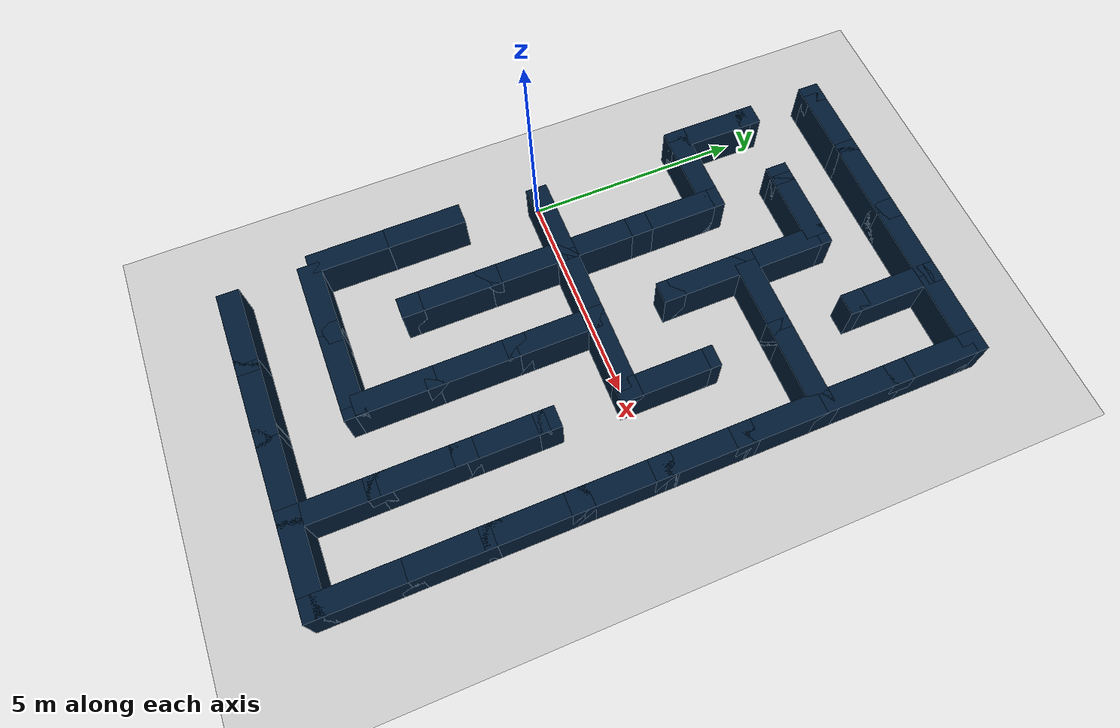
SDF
<sdf version="1.8">
 <world name="maze_8x8">
  <model name="ground_plane">
   <static>1</static>
   <link name="link">
    <collision name="collision">
     <geometry><plane><normal>0 0 1</normal><size>28.80 28.80</size></plane></geometry>
    </collision>
    <visual name="visual">
     <geometry><plane><normal>0 0 1</normal><size>28.80 28.80</size></plane></geometry>
     <material>
      <ambient>0.8 0.8 0.8 1</ambient>
      <diffuse>0.8 0.8 0.8 1</diffuse>
      <specular>0.8 0.8 0.8 1</specular>
     </material>
     <plugin name="__default__" filename="__default__"/>
    </visual>
   </link>
   <plugin name="__default__" filename="__default__"/>
  </model>
  <model name="obstacles">
   <pose>0 0 0.50 0 0 0</pose>
   <static>true</static>
   <link name="corner_block_6">
    <pose>1.80 -7.20 0 0 0 0</pose>
    <static>true</static>
    <collision name="corner_block_6_collision">
     <geometry><box><size>0.50 0.50 1.00</size></box></geometry>
    </collision>
    <visual name="corner_block_6_visual">
     <geometry><box><size>0.50 0.50 1.00</size></box></geometry>
     <material>
      <ambient>0.1 0.1 0.1 1</ambient>
      <diffuse>0 0.1 0.2 1</diffuse>
      <specular>0 0.01 0.05 1</specular>
     </material>
    </visual>
   </link>
   <link name="corner_block_7">
    <pose>3.60 -7.20 0 0 0 0</pose>
    <static>true</static>
    <collision name="corner_block_7_collision">
     <geometry><box><size>0.50 0.50 1.00</size></box></geometry>
    </collision>
    <visual name="corner_block_7_visual">
     <geometry><box><size>0.50 0.50 1.00</size></box></geometry>
     <material>
      <ambient>0.1 0.1 0.1 1</ambient>
      <diffuse>0 0.1 0.2 1</diffuse>
      <specular>0 0.01 0.05 1</specular>
     </material>
    </visual>
   </link>
   <link name="corner_block_8">
    <pose>5.40 -7.20 0 0 0 0</pose>
    <static>true</static>
    <collision name="corner_block_8_collision">
     <geometry><box><size>0.50 0.50 1.00</size></box></geometry>
    </collision>
    <visual name="corner_block_8_visual">
     <geometry><box><size>0.50 0.50 1.00</size></box></geometry>
     <material>
      <ambient>0.1 0.1 0.1 1</ambient>
      <diffuse>0 0.1 0.2 1</diffuse>
      <specular>0 0.01 0.05 1</specular>
     </material>
    </visual>
   </link>
   <link name="corner_block_9">
    <pose>7.20 -7.20 0 0 0 0</pose>
    <static>true</static>
    <collision name="corner_block_9_collision">
     <geometry><box><size>0.50 0.50 1.00</size></box></geometry>
    </collision>
    <visual name="corner_block_9_visual">
     <geometry><box><size>0.50 0.50 1.00</size></box></geometry>
     <material>
      <ambient>0.1 0.1 0.1 1</ambient>
      <diffuse>0 0.1 0.2 1</diffuse>
      <specular>0 0.01 0.05 1</specular>
     </material>
    </visual>
   </link>
   <link name="corner_block_15">
    <pose>1.80 -5.40 0 0 0 0</pose>
    <static>true</static>
    <collision name="corner_block_15_collision">
     <geometry><box><size>0.50 0.50 1.00</size></box></geometry>
    </collision>
    <visual name="corner_block_15_visual">
     <geometry><box><size>0.50 0.50 1.00</size></box></geometry>
     <material>
      <ambient>0.1 0.1 0.1 1</ambient>
      <diffuse>0 0.1 0.2 1</diffuse>
      <specular>0 0.01 0.05 1</specular>
     </material>
    </visual>
   </link>
   <link name="corner_block_16">
    <pose>3.60 -5.40 0 0 0 0</pose>
    <static>true</static>
    <collision name="corner_block_16_collision">
     <geometry><box><size>0.50 0.50 1.00</size></box></geometry>
    </collision>
    <visual name="corner_block_16_visual">
     <geometry><box><size>0.50 0.50 1.00</size></box></geometry>
     <material>
      <ambient>0.1 0.1 0.1 1</ambient>
      <diffuse>0 0.1 0.2 1</diffuse>
      <specular>0 0.01 0.05 1</specular>
     </material>
    </visual>
   </link>
   <link name="corner_block_17">
    <pose>5.40 -5.40 0 0 0 0</pose>
    <static>true</static>
    <collision name="corner_block_17_collision">
     <geometry><box><size>0.50 0.50 1.00</size></box></geometry>
    </collision>
    <visual name="corner_block_17_visual">
     <geometry><box><size>0.50 0.50 1.00</size></box></geometry>
     <material>
      <ambient>0.1 0.1 0.1 1</ambient>
      <diffuse>0 0.1 0.2 1</diffuse>
      <specular>0 0.01 0.05 1</specular>
     </material>
    </visual>
   </link>
   <link name="corner_block_18">
    <pose>7.20 -5.40 0 0 0 0</pose>
    <static>true</static>
    <collision name="corner_block_18_collision">
     <geometry><box><size>0.50 0.50 1.00</size></box></geometry>
    </collision>
    <visual name="corner_block_18_visual">
     <geometry><box><size>0.50 0.50 1.00</size></box></geometry>
     <material>
      <ambient>0.1 0.1 0.1 1</ambient>
      <diffuse>0 0.1 0.2 1</diffuse>
      <specular>0 0.01 0.05 1</specular>
     </material>
    </visual>
   </link>
   <link name="corner_block_24">
    <pose>1.80 -3.60 0 0 0 0</pose>
    <static>true</static>
    <collision name="corner_block_24_collision">
     <geometry><box><size>0.50 0.50 1.00</size></box></geometry>
    </collision>
    <visual name="corner_block_24_visual">
     <geometry><box><size>0.50 0.50 1.00</size></box></geometry>
     <material>
      <ambient>0.1 0.1 0.1 1</ambient>
      <diffuse>0 0.1 0.2 1</diffuse>
      <specular>0 0.01 0.05 1</specular>
     </material>
    </visual>
   </link>
   <link name="corner_block_25">
    <pose>3.60 -3.60 0 0 0 0</pose>
    <static>true</static>
    <collision name="corner_block_25_collision">
     <geometry><box><size>0.50 0.50 1.00</size></box></geometry>
    </collision>
    <visual name="corner_block_25_visual">
     <geometry><box><size>0.50 0.50 1.00</size></box></geometry>
     <material>
      <ambient>0.1 0.1 0.1 1</ambient>
      <diffuse>0 0.1 0.2 1</diffuse>
      <specular>0 0.01 0.05 1</specular>
     </material>
    </visual>
   </link>
   <link name="corner_block_26">
    <pose>5.40 -3.60 0 0 0 0</pose>
    <static>true</static>
    <collision name="corner_block_26_collision">
     <geometry><box><size>0.50 0.50 1.00</size></box></geometry>
    </collision>
    <visual name="corner_block_26_visual">
     <geometry><box><size>0.50 0.50 1.00</size></box></geometry>
     <material>
      <ambient>0.1 0.1 0.1 1</ambient>
      <diffuse>0 0.1 0.2 1</diffuse>
      <specular>0 0.01 0.05 1</specular>
     </material>
    </visual>
   </link>
   <link name="corner_block_27">
    <pose>7.20 -3.60 0 0 0 0</pose>
    <static>true</static>
    <collision name="corner_block_27_collision">
     <geometry><box><size>0.50 0.50 1.00</size></box></geometry>
    </collision>
    <visual name="corner_block_27_visual">
     <geometry><box><size>0.50 0.50 1.00</size></box></geometry>
     <material>
      <ambient>0.1 0.1 0.1 1</ambient>
      <diffuse>0 0.1 0.2 1</diffuse>
      <specular>0 0.01 0.05 1</specular>
     </material>
    </visual>
   </link>
   <link name="corner_block_33">
    <pose>1.80 -1.80 0 0 0 0</pose>
    <static>true</static>
    <collision name="corner_block_33_collision">
     <geometry><box><size>0.50 0.50 1.00</size></box></geometry>
    </collision>
    <visual name="corner_block_33_visual">
     <geometry><box><size>0.50 0.50 1.00</size></box></geometry>
     <material>
      <ambient>0.1 0.1 0.1 1</ambient>
      <diffuse>0 0.1 0.2 1</diffuse>
      <specular>0 0.01 0.05 1</specular>
     </material>
    </visual>
   </link>
   <link name="corner_block_34">
    <pose>3.60 -1.80 0 0 0 0</pose>
    <static>true</static>
    <collision name="corner_block_34_collision">
     <geometry><box><size>0.50 0.50 1.00</size></box></geometry>
    </collision>
    <visual name="corner_block_34_visual">
     <geometry><box><size>0.50 0.50 1.00</size></box></geometry>
     <material>
      <ambient>0.1 0.1 0.1 1</ambient>
      <diffuse>0 0.1 0.2 1</diffuse>
      <specular>0 0.01 0.05 1</specular>
     </material>
    </visual>
   </link>
   <link name="corner_block_35">
    <pose>5.40 -1.80 0 0 0 0</pose>
    <static>true</static>
    <collision name="corner_block_35_collision">
     <geometry><box><size>0.50 0.50 1.00</size></box></geometry>
    </collision>
    <visual name="corner_block_35_visual">
     <geometry><box><size>0.50 0.50 1.00</size></box></geometry>
     <material>
      <ambient>0.1 0.1 0.1 1</ambient>
      <diffuse>0 0.1 0.2 1</diffuse>
      <specular>0 0.01 0.05 1</specular>
     </material>
    </visual>
   </link>
   <link name="corner_block_36">
    <pose>7.20 -1.80 0 0 0 0</pose>
    <static>true</static>
    <collision name="corner_block_36_collision">
     <geometry><box><size>0.50 0.50 1.00</size></box></geometry>
    </collision>
    <visual name="corner_block_36_visual">
     <geometry><box><size>0.50 0.50 1.00</size></box></geometry>
     <material>
      <ambient>0.1 0.1 0.1 1</ambient>
      <diffuse>0 0.1 0.2 1</diffuse>
      <specular>0 0.01 0.05 1</specular>
     </material>
    </visual>
   </link>
   <link name="corner_block_42">
    <pose>1.80 0.00 0 0 0 0</pose>
    <static>true</static>
    <collision name="corner_block_42_collision">
     <geometry><box><size>0.50 0.50 1.00</size></box></geometry>
    </collision>
    <visual name="corner_block_42_visual">
     <geometry><box><size>0.50 0.50 1.00</size></box></geometry>
     <material>
      <ambient>0.1 0.1 0.1 1</ambient>
      <diffuse>0 0.1 0.2 1</diffuse>
      <specular>0 0.01 0.05 1</specular>
     </material>
    </visual>
   </link>
   <link name="corner_block_43">
    <pose>3.60 0.00 0 0 0 0</pose>
    <static>true</static>
    <collision name="corner_block_43_collision">
     <geometry><box><size>0.50 0.50 1.00</size></box></geometry>
    </collision>
    <visual name="corner_block_43_visual">
     <geometry><box><size>0.50 0.50 1.00</size></box></geometry>
     <material>
      <ambient>0.1 0.1 0.1 1</ambient>
      <diffuse>0 0.1 0.2 1</diffuse>
      <specular>0 0.01 0.05 1</specular>
     </material>
    </visual>
   </link>
   <link name="corner_block_44">
    <pose>5.40 0.00 0 0 0 0</pose>
    <static>true</static>
    <collision name="corner_block_44_collision">
     <geometry><box><size>0.50 0.50 1.00</size></box></geometry>
    </collision>
    <visual name="corner_block_44_visual">
     <geometry><box><size>0.50 0.50 1.00</size></box></geometry>
     <material>
      <ambient>0.1 0.1 0.1 1</ambient>
      <diffuse>0 0.1 0.2 1</diffuse>
      <specular>0 0.01 0.05 1</specular>
     </material>
    </visual>
   </link>
   <link name="corner_block_45">
    <pose>7.20 0.00 0 0 0 0</pose>
    <static>true</static>
    <collision name="corner_block_45_collision">
     <geometry><box><size>0.50 0.50 1.00</size></box></geometry>
    </collision>
    <visual name="corner_block_45_visual">
     <geometry><box><size>0.50 0.50 1.00</size></box></geometry>
     <material>
      <ambient>0.1 0.1 0.1 1</ambient>
      <diffuse>0 0.1 0.2 1</diffuse>
      <specular>0 0.01 0.05 1</specular>
     </material>
    </visual>
   </link>
   <link name="corner_block_51">
    <pose>1.80 1.80 0 0 0 0</pose>
    <static>true</static>
    <collision name="corner_block_51_collision">
     <geometry><box><size>0.50 0.50 1.00</size></box></geometry>
    </collision>
    <visual name="corner_block_51_visual">
     <geometry><box><size>0.50 0.50 1.00</size></box></geometry>
     <material>
      <ambient>0.1 0.1 0.1 1</ambient>
      <diffuse>0 0.1 0.2 1</diffuse>
      <specular>0 0.01 0.05 1</specular>
     </material>
    </visual>
   </link>
   <link name="corner_block_52">
    <pose>3.60 1.80 0 0 0 0</pose>
    <static>true</static>
    <collision name="corner_block_52_collision">
     <geometry><box><size>0.50 0.50 1.00</size></box></geometry>
    </collision>
    <visual name="corner_block_52_visual">
     <geometry><box><size>0.50 0.50 1.00</size></box></geometry>
     <material>
      <ambient>0.1 0.1 0.1 1</ambient>
      <diffuse>0 0.1 0.2 1</diffuse>
      <specular>0 0.01 0.05 1</specular>
     </material>
    </visual>
   </link>
   <link name="corner_block_53">
    <pose>5.40 1.80 0 0 0 0</pose>
    <static>true</static>
    <collision name="corner_block_53_collision">
     <geometry><box><size>0.50 0.50 1.00</size></box></geometry>
    </collision>
    <visual name="corner_block_53_visual">
     <geometry><box><size>0.50 0.50 1.00</size></box></geometry>
     <material>
      <ambient>0.1 0.1 0.1 1</ambient>
      <diffuse>0 0.1 0.2 1</diffuse>
      <specular>0 0.01 0.05 1</specular>
     </material>
    </visual>
   </link>
   <link name="corner_block_54">
    <pose>7.20 1.80 0 0 0 0</pose>
    <static>true</static>
    <collision name="corner_block_54_collision">
     <geometry><box><size>0.50 0.50 1.00</size></box></geometry>
    </collision>
    <visual name="corner_block_54_visual">
     <geometry><box><size>0.50 0.50 1.00</size></box></geometry>
     <material>
      <ambient>0.1 0.1 0.1 1</ambient>
      <diffuse>0 0.1 0.2 1</diffuse>
      <specular>0 0.01 0.05 1</specular>
     </material>
    </visual>
   </link>
   <link name="corner_block_59">
    <pose>0.00 3.60 0 0 0 0</pose>
    <static>true</static>
    <collision name="corner_block_59_collision">
     <geometry><box><size>0.50 0.50 1.00</size></box></geometry>
    </collision>
    <visual name="corner_block_59_visual">
     <geometry><box><size>0.50 0.50 1.00</size></box></geometry>
     <material>
      <ambient>0.1 0.1 0.1 1</ambient>
      <diffuse>0 0.1 0.2 1</diffuse>
      <specular>0 0.01 0.05 1</specular>
     </material>
    </visual>
   </link>
   <link name="corner_block_60">
    <pose>1.80 3.60 0 0 0 0</pose>
    <static>true</static>
    <collision name="corner_block_60_collision">
     <geometry><box><size>0.50 0.50 1.00</size></box></geometry>
    </collision>
    <visual name="corner_block_60_visual">
     <geometry><box><size>0.50 0.50 1.00</size></box></geometry>
     <material>
      <ambient>0.1 0.1 0.1 1</ambient>
      <diffuse>0 0.1 0.2 1</diffuse>
      <specular>0 0.01 0.05 1</specular>
     </material>
    </visual>
   </link>
   <link name="corner_block_61">
    <pose>3.60 3.60 0 0 0 0</pose>
    <static>true</static>
    <collision name="corner_block_61_collision">
     <geometry><box><size>0.50 0.50 1.00</size></box></geometry>
    </collision>
    <visual name="corner_block_61_visual">
     <geometry><box><size>0.50 0.50 1.00</size></box></geometry>
     <material>
      <ambient>0.1 0.1 0.1 1</ambient>
      <diffuse>0 0.1 0.2 1</diffuse>
      <specular>0 0.01 0.05 1</specular>
     </material>
    </visual>
   </link>
   <link name="corner_block_62">
    <pose>5.40 3.60 0 0 0 0</pose>
    <static>true</static>
    <collision name="corner_block_62_collision">
     <geometry><box><size>0.50 0.50 1.00</size></box></geometry>
    </collision>
    <visual name="corner_block_62_visual">
     <geometry><box><size>0.50 0.50 1.00</size></box></geometry>
     <material>
      <ambient>0.1 0.1 0.1 1</ambient>
      <diffuse>0 0.1 0.2 1</diffuse>
      <specular>0 0.01 0.05 1</specular>
     </material>
    </visual>
   </link>
   <link name="corner_block_63">
    <pose>7.20 3.60 0 0 0 0</pose>
    <static>true</static>
    <collision name="corner_block_63_collision">
     <geometry><box><size>0.50 0.50 1.00</size></box></geometry>
    </collision>
    <visual name="corner_block_63_visual">
     <geometry><box><size>0.50 0.50 1.00</size></box></geometry>
     <material>
      <ambient>0.1 0.1 0.1 1</ambient>
      <diffuse>0 0.1 0.2 1</diffuse>
      <specular>0 0.01 0.05 1</specular>
     </material>
    </visual>
   </link>
   <link name="corner_block_68">
    <pose>0.00 5.40 0 0 0 0</pose>
    <static>true</static>
    <collision name="corner_block_68_collision">
     <geometry><box><size>0.50 0.50 1.00</size></box></geometry>
    </collision>
    <visual name="corner_block_68_visual">
     <geometry><box><size>0.50 0.50 1.00</size></box></geometry>
     <material>
      <ambient>0.1 0.1 0.1 1</ambient>
      <diffuse>0 0.1 0.2 1</diffuse>
      <specular>0 0.01 0.05 1</specular>
     </material>
    </visual>
   </link>
   <link name="corner_block_69">
    <pose>1.80 5.40 0 0 0 0</pose>
    <static>true</static>
    <collision name="corner_block_69_collision">
     <geometry><box><size>0.50 0.50 1.00</size></box></geometry>
    </collision>
    <visual name="corner_block_69_visual">
     <geometry><box><size>0.50 0.50 1.00</size></box></geometry>
     <material>
      <ambient>0.1 0.1 0.1 1</ambient>
      <diffuse>0 0.1 0.2 1</diffuse>
      <specular>0 0.01 0.05 1</specular>
     </material>
    </visual>
   </link>
   <link name="corner_block_70">
    <pose>3.60 5.40 0 0 0 0</pose>
    <static>true</static>
    <collision name="corner_block_70_collision">
     <geometry><box><size>0.50 0.50 1.00</size></box></geometry>
    </collision>
    <visual name="corner_block_70_visual">
     <geometry><box><size>0.50 0.50 1.00</size></box></geometry>
     <material>
      <ambient>0.1 0.1 0.1 1</ambient>
      <diffuse>0 0.1 0.2 1</diffuse>
      <specular>0 0.01 0.05 1</specular>
     </material>
    </visual>
   </link>
   <link name="corner_block_71">
    <pose>5.40 5.40 0 0 0 0</pose>
    <static>true</static>
    <collision name="corner_block_71_collision">
     <geometry><box><size>0.50 0.50 1.00</size></box></geometry>
    </collision>
    <visual name="corner_block_71_visual">
     <geometry><box><size>0.50 0.50 1.00</size></box></geometry>
     <material>
      <ambient>0.1 0.1 0.1 1</ambient>
      <diffuse>0 0.1 0.2 1</diffuse>
      <specular>0 0.01 0.05 1</specular>
     </material>
    </visual>
   </link>
   <link name="corner_block_72">
    <pose>7.20 5.40 0 0 0 0</pose>
    <static>true</static>
    <collision name="corner_block_72_collision">
     <geometry><box><size>0.50 0.50 1.00</size></box></geometry>
    </collision>
    <visual name="corner_block_72_visual">
     <geometry><box><size>0.50 0.50 1.00</size></box></geometry>
     <material>
      <ambient>0.1 0.1 0.1 1</ambient>
      <diffuse>0 0.1 0.2 1</diffuse>
      <specular>0 0.01 0.05 1</specular>
     </material>
    </visual>
   </link>
   <link name="corner_block_77">
    <pose>0.00 7.20 0 0 0 0</pose>
    <static>true</static>
    <collision name="corner_block_77_collision">
     <geometry><box><size>0.50 0.50 1.00</size></box></geometry>
    </collision>
    <visual name="corner_block_77_visual">
     <geometry><box><size>0.50 0.50 1.00</size></box></geometry>
     <material>
      <ambient>0.1 0.1 0.1 1</ambient>
      <diffuse>0 0.1 0.2 1</diffuse>
      <specular>0 0.01 0.05 1</specular>
     </material>
    </visual>
   </link>
   <link name="corner_block_78">
    <pose>1.80 7.20 0 0 0 0</pose>
    <static>true</static>
    <collision name="corner_block_78_collision">
     <geometry><box><size>0.50 0.50 1.00</size></box></geometry>
    </collision>
    <visual name="corner_block_78_visual">
     <geometry><box><size>0.50 0.50 1.00</size></box></geometry>
     <material>
      <ambient>0.1 0.1 0.1 1</ambient>
      <diffuse>0 0.1 0.2 1</diffuse>
      <specular>0 0.01 0.05 1</specular>
     </material>
    </visual>
   </link>
   <link name="corner_block_79">
    <pose>3.60 7.20 0 0 0 0</pose>
    <static>true</static>
    <collision name="corner_block_79_collision">
     <geometry><box><size>0.50 0.50 1.00</size></box></geometry>
    </collision>
    <visual name="corner_block_79_visual">
     <geometry><box><size>0.50 0.50 1.00</size></box></geometry>
     <material>
      <ambient>0.1 0.1 0.1 1</ambient>
      <diffuse>0 0.1 0.2 1</diffuse>
      <specular>0 0.01 0.05 1</specular>
     </material>
    </visual>
   </link>
   <link name="corner_block_80">
    <pose>5.40 7.20 0 0 0 0</pose>
    <static>true</static>
    <collision name="corner_block_80_collision">
     <geometry><box><size>0.50 0.50 1.00</size></box></geometry>
    </collision>
    <visual name="corner_block_80_visual">
     <geometry><box><size>0.50 0.50 1.00</size></box></geometry>
     <material>
      <ambient>0.1 0.1 0.1 1</ambient>
      <diffuse>0 0.1 0.2 1</diffuse>
      <specular>0 0.01 0.05 1</specular>
     </material>
    </visual>
   </link>
   <link name="corner_block_81">
    <pose>7.20 7.20 0 0 0 0</pose>
    <static>true</static>
    <collision name="corner_block_81_collision">
     <geometry><box><size>0.50 0.50 1.00</size></box></geometry>
    </collision>
    <visual name="corner_block_81_visual">
     <geometry><box><size>0.50 0.50 1.00</size></box></geometry>
     <material>
      <ambient>0.1 0.1 0.1 1</ambient>
      <diffuse>0 0.1 0.2 1</diffuse>
      <specular>0 0.01 0.05 1</specular>
     </material>
    </visual>
   </link>
   <link name="wall86">
    <pose>0.90 -7.20 0 0 0 0</pose>
    <static>true</static>
    <collision name="wall86_collision"><geometry><box><size>1.80 0.50 1.00</size></box></geometry></collision>
    <visual name="wall86_visual">
     <geometry><box><size>1.80 0.50 1.00</size></box></geometry>
     <material>
      <ambient>0.1 0.1 0.1 1</ambient>
      <diffuse>0 0.1 0.2 1</diffuse>
      <specular>0 0.01 0.05 1</specular>
     </material>
    </visual>
   </link>
   <link name="wall87">
    <pose>2.70 -7.20 0 0 0 0</pose>
    <static>true</static>
    <collision name="wall87_collision"><geometry><box><size>1.80 0.50 1.00</size></box></geometry></collision>
    <visual name="wall87_visual">
     <geometry><box><size>1.80 0.50 1.00</size></box></geometry>
     <material>
      <ambient>0.1 0.1 0.1 1</ambient>
      <diffuse>0 0.1 0.2 1</diffuse>
      <specular>0 0.01 0.05 1</specular>
     </material>
    </visual>
   </link>
   <link name="wall88">
    <pose>4.50 -7.20 0 0 0 0</pose>
    <static>true</static>
    <collision name="wall88_collision"><geometry><box><size>1.80 0.50 1.00</size></box></geometry></collision>
    <visual name="wall88_visual">
     <geometry><box><size>1.80 0.50 1.00</size></box></geometry>
     <material>
      <ambient>0.1 0.1 0.1 1</ambient>
      <diffuse>0 0.1 0.2 1</diffuse>
      <specular>0 0.01 0.05 1</specular>
     </material>
    </visual>
   </link>
   <link name="wall89">
    <pose>6.30 -7.20 0 0 0 0</pose>
    <static>true</static>
    <collision name="wall89_collision"><geometry><box><size>1.80 0.50 1.00</size></box></geometry></collision>
    <visual name="wall89_visual">
     <geometry><box><size>1.80 0.50 1.00</size></box></geometry>
     <material>
      <ambient>0.1 0.1 0.1 1</ambient>
      <diffuse>0 0.1 0.2 1</diffuse>
      <specular>0 0.01 0.05 1</specular>
     </material>
    </visual>
   </link>
   <link name="wall91">
    <pose>0.90 -5.40 0 0 0 0</pose>
    <static>true</static>
    <collision name="wall91_collision"><geometry><box><size>1.80 0.50 1.00</size></box></geometry></collision>
    <visual name="wall91_visual">
     <geometry><box><size>1.80 0.50 1.00</size></box></geometry>
     <material>
      <ambient>0.1 0.1 0.1 1</ambient>
      <diffuse>0 0.1 0.2 1</diffuse>
      <specular>0 0.01 0.05 1</specular>
     </material>
    </visual>
   </link>
   <link name="wall92">
    <pose>2.70 -5.40 0 0 0 0</pose>
    <static>true</static>
    <collision name="wall92_collision"><geometry><box><size>1.80 0.50 1.00</size></box></geometry></collision>
    <visual name="wall92_visual">
     <geometry><box><size>1.80 0.50 1.00</size></box></geometry>
     <material>
      <ambient>0.1 0.1 0.1 1</ambient>
      <diffuse>0 0.1 0.2 1</diffuse>
      <specular>0 0.01 0.05 1</specular>
     </material>
    </visual>
   </link>
   <link name="wall98">
    <pose>0.90 0.00 0 0 0 0</pose>
    <static>true</static>
    <collision name="wall98_collision"><geometry><box><size>1.80 0.50 1.00</size></box></geometry></collision>
    <visual name="wall98_visual">
     <geometry><box><size>1.80 0.50 1.00</size></box></geometry>
     <material>
      <ambient>0.1 0.1 0.1 1</ambient>
      <diffuse>0 0.1 0.2 1</diffuse>
      <specular>0 0.01 0.05 1</specular>
     </material>
    </visual>
   </link>
   <link name="wall99">
    <pose>2.70 0.00 0 0 0 0</pose>
    <static>true</static>
    <collision name="wall99_collision"><geometry><box><size>1.80 0.50 1.00</size></box></geometry></collision>
    <visual name="wall99_visual">
     <geometry><box><size>1.80 0.50 1.00</size></box></geometry>
     <material>
      <ambient>0.1 0.1 0.1 1</ambient>
      <diffuse>0 0.1 0.2 1</diffuse>
      <specular>0 0.01 0.05 1</specular>
     </material>
    </visual>
   </link>
   <link name="wall100">
    <pose>4.50 0.00 0 0 0 0</pose>
    <static>true</static>
    <collision name="wall100_collision"><geometry><box><size>1.80 0.50 1.00</size></box></geometry></collision>
    <visual name="wall100_visual">
     <geometry><box><size>1.80 0.50 1.00</size></box></geometry>
     <material>
      <ambient>0.1 0.1 0.1 1</ambient>
      <diffuse>0 0.1 0.2 1</diffuse>
      <specular>0 0.01 0.05 1</specular>
     </material>
    </visual>
   </link>
   <link name="wall106">
    <pose>0.90 3.60 0 0 0 0</pose>
    <static>true</static>
    <collision name="wall106_collision"><geometry><box><size>1.80 0.50 1.00</size></box></geometry></collision>
    <visual name="wall106_visual">
     <geometry><box><size>1.80 0.50 1.00</size></box></geometry>
     <material>
      <ambient>0.1 0.1 0.1 1</ambient>
      <diffuse>0 0.1 0.2 1</diffuse>
      <specular>0 0.01 0.05 1</specular>
     </material>
    </visual>
   </link>
   <link name="wall107">
    <pose>4.50 3.60 0 0 0 0</pose>
    <static>true</static>
    <collision name="wall107_collision"><geometry><box><size>1.80 0.50 1.00</size></box></geometry></collision>
    <visual name="wall107_visual">
     <geometry><box><size>1.80 0.50 1.00</size></box></geometry>
     <material>
      <ambient>0.1 0.1 0.1 1</ambient>
      <diffuse>0 0.1 0.2 1</diffuse>
      <specular>0 0.01 0.05 1</specular>
     </material>
    </visual>
   </link>
   <link name="wall108">
    <pose>6.30 3.60 0 0 0 0</pose>
    <static>true</static>
    <collision name="wall108_collision"><geometry><box><size>1.80 0.50 1.00</size></box></geometry></collision>
    <visual name="wall108_visual">
     <geometry><box><size>1.80 0.50 1.00</size></box></geometry>
     <material>
      <ambient>0.1 0.1 0.1 1</ambient>
      <diffuse>0 0.1 0.2 1</diffuse>
      <specular>0 0.01 0.05 1</specular>
     </material>
    </visual>
   </link>
   <link name="wall111">
    <pose>2.70 5.40 0 0 0 0</pose>
    <static>true</static>
    <collision name="wall111_collision"><geometry><box><size>1.80 0.50 1.00</size></box></geometry></collision>
    <visual name="wall111_visual">
     <geometry><box><size>1.80 0.50 1.00</size></box></geometry>
     <material>
      <ambient>0.1 0.1 0.1 1</ambient>
      <diffuse>0 0.1 0.2 1</diffuse>
      <specular>0 0.01 0.05 1</specular>
     </material>
    </visual>
   </link>
   <link name="wall116">
    <pose>0.90 7.20 0 0 0 0</pose>
    <static>true</static>
    <collision name="wall116_collision"><geometry><box><size>1.80 0.50 1.00</size></box></geometry></collision>
    <visual name="wall116_visual">
     <geometry><box><size>1.80 0.50 1.00</size></box></geometry>
     <material>
      <ambient>0.1 0.1 0.1 1</ambient>
      <diffuse>0 0.1 0.2 1</diffuse>
      <specular>0 0.01 0.05 1</specular>
     </material>
    </visual>
   </link>
   <link name="wall117">
    <pose>2.70 7.20 0 0 0 0</pose>
    <static>true</static>
    <collision name="wall117_collision"><geometry><box><size>1.80 0.50 1.00</size></box></geometry></collision>
    <visual name="wall117_visual">
     <geometry><box><size>1.80 0.50 1.00</size></box></geometry>
     <material>
      <ambient>0.1 0.1 0.1 1</ambient>
      <diffuse>0 0.1 0.2 1</diffuse>
      <specular>0 0.01 0.05 1</specular>
     </material>
    </visual>
   </link>
   <link name="wall118">
    <pose>4.50 7.20 0 0 0 0</pose>
    <static>true</static>
    <collision name="wall118_collision"><geometry><box><size>1.80 0.50 1.00</size></box></geometry></collision>
    <visual name="wall118_visual">
     <geometry><box><size>1.80 0.50 1.00</size></box></geometry>
     <material>
      <ambient>0.1 0.1 0.1 1</ambient>
      <diffuse>0 0.1 0.2 1</diffuse>
      <specular>0 0.01 0.05 1</specular>
     </material>
    </visual>
   </link>
   <link name="wall119">
    <pose>6.30 7.20 0 0 0 0</pose>
    <static>true</static>
    <collision name="wall119_collision"><geometry><box><size>1.80 0.50 1.00</size></box></geometry></collision>
    <visual name="wall119_visual">
     <geometry><box><size>1.80 0.50 1.00</size></box></geometry>
     <material>
      <ambient>0.1 0.1 0.1 1</ambient>
      <diffuse>0 0.1 0.2 1</diffuse>
      <specular>0 0.01 0.05 1</specular>
     </material>
    </visual>
   </link>
   <link name="wall122">
    <pose>5.40 -6.30 0 0 0 0</pose>
    <static>true</static>
    <collision name="wall122_collision"><geometry><box><size>0.50 1.80 1.00</size></box></geometry></collision>
    <visual name="wall122_visual">
     <geometry><box><size>0.50 1.80 1.00</size></box></geometry>
     <material>
      <ambient>0.1 0.1 0.1 1</ambient>
      <diffuse>0 0.1 0.2 1</diffuse>
      <specular>0 0.01 0.05 1</specular>
     </material>
    </visual>
   </link>
   <link name="wall123">
    <pose>7.20 -6.30 0 0 0 0</pose>
    <static>true</static>
    <collision name="wall123_collision"><geometry><box><size>0.50 1.80 1.00</size></box></geometry></collision>
    <visual name="wall123_visual">
     <geometry><box><size>0.50 1.80 1.00</size></box></geometry>
     <material>
      <ambient>0.1 0.1 0.1 1</ambient>
      <diffuse>0 0.1 0.2 1</diffuse>
      <specular>0 0.01 0.05 1</specular>
     </material>
    </visual>
   </link>
   <link name="wall128">
    <pose>0.00 -4.50 0 0 0 0</pose>
    <static>true</static>
    <collision name="wall128_collision"><geometry><box><size>0.50 1.80 1.00</size></box></geometry></collision>
    <visual name="wall128_visual">
     <geometry><box><size>0.50 1.80 1.00</size></box></geometry>
     <material>
      <ambient>0.1 0.1 0.1 1</ambient>
      <diffuse>0 0.1 0.2 1</diffuse>
      <specular>0 0.01 0.05 1</specular>
     </material>
    </visual>
   </link>
   <link name="wall129">
    <pose>3.60 -4.50 0 0 0 0</pose>
    <static>true</static>
    <collision name="wall129_collision"><geometry><box><size>0.50 1.80 1.00</size></box></geometry></collision>
    <visual name="wall129_visual">
     <geometry><box><size>0.50 1.80 1.00</size></box></geometry>
     <material>
      <ambient>0.1 0.1 0.1 1</ambient>
      <diffuse>0 0.1 0.2 1</diffuse>
      <specular>0 0.01 0.05 1</specular>
     </material>
    </visual>
   </link>
   <link name="wall130">
    <pose>5.40 -4.50 0 0 0 0</pose>
    <static>true</static>
    <collision name="wall130_collision"><geometry><box><size>0.50 1.80 1.00</size></box></geometry></collision>
    <visual name="wall130_visual">
     <geometry><box><size>0.50 1.80 1.00</size></box></geometry>
     <material>
      <ambient>0.1 0.1 0.1 1</ambient>
      <diffuse>0 0.1 0.2 1</diffuse>
      <specular>0 0.01 0.05 1</specular>
     </material>
    </visual>
   </link>
   <link name="wall131">
    <pose>7.20 -4.50 0 0 0 0</pose>
    <static>true</static>
    <collision name="wall131_collision"><geometry><box><size>0.50 1.80 1.00</size></box></geometry></collision>
    <visual name="wall131_visual">
     <geometry><box><size>0.50 1.80 1.00</size></box></geometry>
     <material>
      <ambient>0.1 0.1 0.1 1</ambient>
      <diffuse>0 0.1 0.2 1</diffuse>
      <specular>0 0.01 0.05 1</specular>
     </material>
    </visual>
   </link>
   <link name="wall134">
    <pose>0.00 -2.70 0 0 0 0</pose>
    <static>true</static>
    <collision name="wall134_collision"><geometry><box><size>0.50 1.80 1.00</size></box></geometry></collision>
    <visual name="wall134_visual">
     <geometry><box><size>0.50 1.80 1.00</size></box></geometry>
     <material>
      <ambient>0.1 0.1 0.1 1</ambient>
      <diffuse>0 0.1 0.2 1</diffuse>
      <specular>0 0.01 0.05 1</specular>
     </material>
    </visual>
   </link>
   <link name="wall135">
    <pose>1.80 -2.70 0 0 0 0</pose>
    <static>true</static>
    <collision name="wall135_collision"><geometry><box><size>0.50 1.80 1.00</size></box></geometry></collision>
    <visual name="wall135_visual">
     <geometry><box><size>0.50 1.80 1.00</size></box></geometry>
     <material>
      <ambient>0.1 0.1 0.1 1</ambient>
      <diffuse>0 0.1 0.2 1</diffuse>
      <specular>0 0.01 0.05 1</specular>
     </material>
    </visual>
   </link>
   <link name="wall136">
    <pose>3.60 -2.70 0 0 0 0</pose>
    <static>true</static>
    <collision name="wall136_collision"><geometry><box><size>0.50 1.80 1.00</size></box></geometry></collision>
    <visual name="wall136_visual">
     <geometry><box><size>0.50 1.80 1.00</size></box></geometry>
     <material>
      <ambient>0.1 0.1 0.1 1</ambient>
      <diffuse>0 0.1 0.2 1</diffuse>
      <specular>0 0.01 0.05 1</specular>
     </material>
    </visual>
   </link>
   <link name="wall137">
    <pose>5.40 -2.70 0 0 0 0</pose>
    <static>true</static>
    <collision name="wall137_collision"><geometry><box><size>0.50 1.80 1.00</size></box></geometry></collision>
    <visual name="wall137_visual">
     <geometry><box><size>0.50 1.80 1.00</size></box></geometry>
     <material>
      <ambient>0.1 0.1 0.1 1</ambient>
      <diffuse>0 0.1 0.2 1</diffuse>
      <specular>0 0.01 0.05 1</specular>
     </material>
    </visual>
   </link>
   <link name="wall138">
    <pose>7.20 -2.70 0 0 0 0</pose>
    <static>true</static>
    <collision name="wall138_collision"><geometry><box><size>0.50 1.80 1.00</size></box></geometry></collision>
    <visual name="wall138_visual">
     <geometry><box><size>0.50 1.80 1.00</size></box></geometry>
     <material>
      <ambient>0.1 0.1 0.1 1</ambient>
      <diffuse>0 0.1 0.2 1</diffuse>
      <specular>0 0.01 0.05 1</specular>
     </material>
    </visual>
   </link>
   <link name="wall141">
    <pose>1.80 -0.90 0 0 0 0</pose>
    <static>true</static>
    <collision name="wall141_collision"><geometry><box><size>0.50 1.80 1.00</size></box></geometry></collision>
    <visual name="wall141_visual">
     <geometry><box><size>0.50 1.80 1.00</size></box></geometry>
     <material>
      <ambient>0.1 0.1 0.1 1</ambient>
      <diffuse>0 0.1 0.2 1</diffuse>
      <specular>0 0.01 0.05 1</specular>
     </material>
    </visual>
   </link>
   <link name="wall142">
    <pose>3.60 -0.90 0 0 0 0</pose>
    <static>true</static>
    <collision name="wall142_collision"><geometry><box><size>0.50 1.80 1.00</size></box></geometry></collision>
    <visual name="wall142_visual">
     <geometry><box><size>0.50 1.80 1.00</size></box></geometry>
     <material>
      <ambient>0.1 0.1 0.1 1</ambient>
      <diffuse>0 0.1 0.2 1</diffuse>
      <specular>0 0.01 0.05 1</specular>
     </material>
    </visual>
   </link>
   <link name="wall143">
    <pose>7.20 -0.90 0 0 0 0</pose>
    <static>true</static>
    <collision name="wall143_collision"><geometry><box><size>0.50 1.80 1.00</size></box></geometry></collision>
    <visual name="wall143_visual">
     <geometry><box><size>0.50 1.80 1.00</size></box></geometry>
     <material>
      <ambient>0.1 0.1 0.1 1</ambient>
      <diffuse>0 0.1 0.2 1</diffuse>
      <specular>0 0.01 0.05 1</specular>
     </material>
    </visual>
   </link>
   <link name="wall146">
    <pose>1.80 0.90 0 0 0 0</pose>
    <static>true</static>
    <collision name="wall146_collision"><geometry><box><size>0.50 1.80 1.00</size></box></geometry></collision>
    <visual name="wall146_visual">
     <geometry><box><size>0.50 1.80 1.00</size></box></geometry>
     <material>
      <ambient>0.1 0.1 0.1 1</ambient>
      <diffuse>0 0.1 0.2 1</diffuse>
      <specular>0 0.01 0.05 1</specular>
     </material>
    </visual>
   </link>
   <link name="wall147">
    <pose>5.40 0.90 0 0 0 0</pose>
    <static>true</static>
    <collision name="wall147_collision"><geometry><box><size>0.50 1.80 1.00</size></box></geometry></collision>
    <visual name="wall147_visual">
     <geometry><box><size>0.50 1.80 1.00</size></box></geometry>
     <material>
      <ambient>0.1 0.1 0.1 1</ambient>
      <diffuse>0 0.1 0.2 1</diffuse>
      <specular>0 0.01 0.05 1</specular>
     </material>
    </visual>
   </link>
   <link name="wall148">
    <pose>7.20 0.90 0 0 0 0</pose>
    <static>true</static>
    <collision name="wall148_collision"><geometry><box><size>0.50 1.80 1.00</size></box></geometry></collision>
    <visual name="wall148_visual">
     <geometry><box><size>0.50 1.80 1.00</size></box></geometry>
     <material>
      <ambient>0.1 0.1 0.1 1</ambient>
      <diffuse>0 0.1 0.2 1</diffuse>
      <specular>0 0.01 0.05 1</specular>
     </material>
    </visual>
   </link>
   <link name="wall151">
    <pose>1.80 2.70 0 0 0 0</pose>
    <static>true</static>
    <collision name="wall151_collision"><geometry><box><size>0.50 1.80 1.00</size></box></geometry></collision>
    <visual name="wall151_visual">
     <geometry><box><size>0.50 1.80 1.00</size></box></geometry>
     <material>
      <ambient>0.1 0.1 0.1 1</ambient>
      <diffuse>0 0.1 0.2 1</diffuse>
      <specular>0 0.01 0.05 1</specular>
     </material>
    </visual>
   </link>
   <link name="wall152">
    <pose>3.60 2.70 0 0 0 0</pose>
    <static>true</static>
    <collision name="wall152_collision"><geometry><box><size>0.50 1.80 1.00</size></box></geometry></collision>
    <visual name="wall152_visual">
     <geometry><box><size>0.50 1.80 1.00</size></box></geometry>
     <material>
      <ambient>0.1 0.1 0.1 1</ambient>
      <diffuse>0 0.1 0.2 1</diffuse>
      <specular>0 0.01 0.05 1</specular>
     </material>
    </visual>
   </link>
   <link name="wall153">
    <pose>7.20 2.70 0 0 0 0</pose>
    <static>true</static>
    <collision name="wall153_collision"><geometry><box><size>0.50 1.80 1.00</size></box></geometry></collision>
    <visual name="wall153_visual">
     <geometry><box><size>0.50 1.80 1.00</size></box></geometry>
     <material>
      <ambient>0.1 0.1 0.1 1</ambient>
      <diffuse>0 0.1 0.2 1</diffuse>
      <specular>0 0.01 0.05 1</specular>
     </material>
    </visual>
   </link>
   <link name="wall156">
    <pose>0.00 4.50 0 0 0 0</pose>
    <static>true</static>
    <collision name="wall156_collision"><geometry><box><size>0.50 1.80 1.00</size></box></geometry></collision>
    <visual name="wall156_visual">
     <geometry><box><size>0.50 1.80 1.00</size></box></geometry>
     <material>
      <ambient>0.1 0.1 0.1 1</ambient>
      <diffuse>0 0.1 0.2 1</diffuse>
      <specular>0 0.01 0.05 1</specular>
     </material>
    </visual>
   </link>
   <link name="wall157">
    <pose>3.60 4.50 0 0 0 0</pose>
    <static>true</static>
    <collision name="wall157_collision"><geometry><box><size>0.50 1.80 1.00</size></box></geometry></collision>
    <visual name="wall157_visual">
     <geometry><box><size>0.50 1.80 1.00</size></box></geometry>
     <material>
      <ambient>0.1 0.1 0.1 1</ambient>
      <diffuse>0 0.1 0.2 1</diffuse>
      <specular>0 0.01 0.05 1</specular>
     </material>
    </visual>
   </link>
   <link name="wall158">
    <pose>7.20 4.50 0 0 0 0</pose>
    <static>true</static>
    <collision name="wall158_collision"><geometry><box><size>0.50 1.80 1.00</size></box></geometry></collision>
    <visual name="wall158_visual">
     <geometry><box><size>0.50 1.80 1.00</size></box></geometry>
     <material>
      <ambient>0.1 0.1 0.1 1</ambient>
      <diffuse>0 0.1 0.2 1</diffuse>
      <specular>0 0.01 0.05 1</specular>
     </material>
    </visual>
   </link>
   <link name="wall161">
    <pose>5.40 6.30 0 0 0 0</pose>
    <static>true</static>
    <collision name="wall161_collision"><geometry><box><size>0.50 1.80 1.00</size></box></geometry></collision>
    <visual name="wall161_visual">
     <geometry><box><size>0.50 1.80 1.00</size></box></geometry>
     <material>
      <ambient>0.1 0.1 0.1 1</ambient>
      <diffuse>0 0.1 0.2 1</diffuse>
      <specular>0 0.01 0.05 1</specular>
     </material>
    </visual>
   </link>
   <link name="wall162">
    <pose>7.20 6.30 0 0 0 0</pose>
    <static>true</static>
    <collision name="wall162_collision"><geometry><box><size>0.50 1.80 1.00</size></box></geometry></collision>
    <visual name="wall162_visual">
     <geometry><box><size>0.50 1.80 1.00</size></box></geometry>
     <material>
      <ambient>0.1 0.1 0.1 1</ambient>
      <diffuse>0 0.1 0.2 1</diffuse>
      <specular>0 0.01 0.05 1</specular>
     </material>
    </visual>
   </link>
  </model>
 </world>
</sdf>
